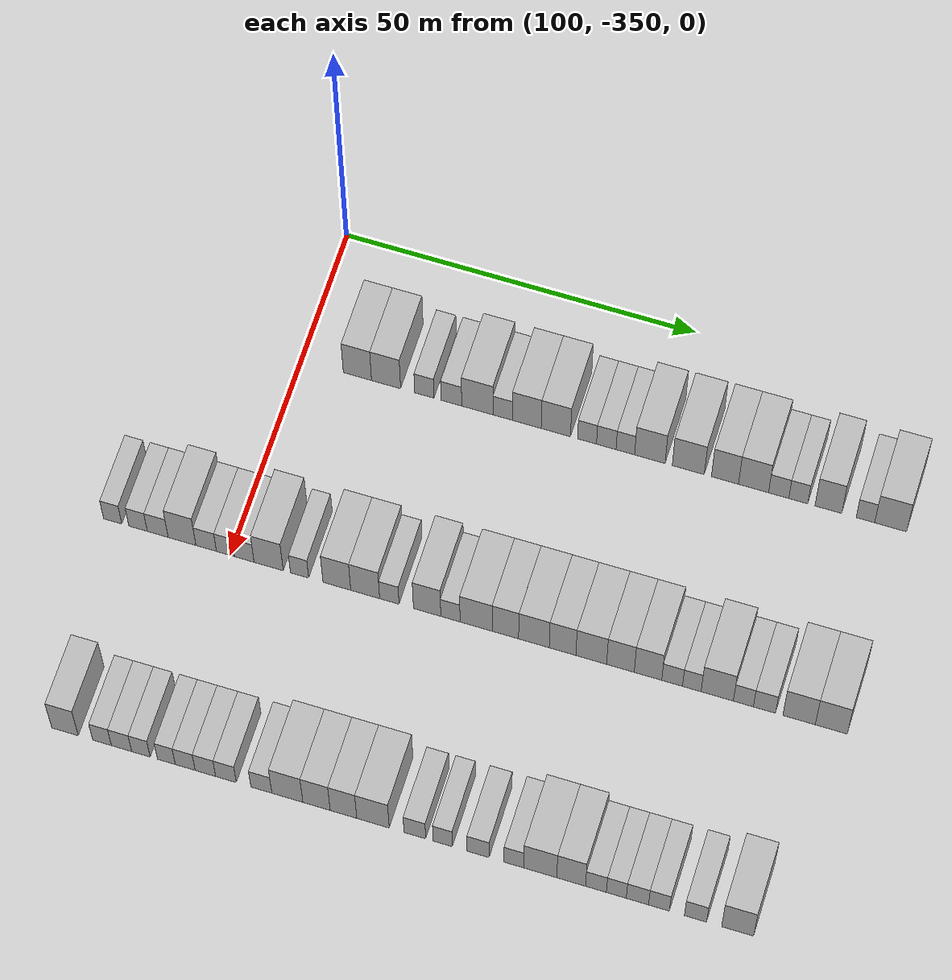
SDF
<sdf version="1.6">
 <world name="default">
  <model name="building_725">
   <static>1</static>
   <pose>115.0000 -341.9923 0 0.000000 0.000000 0.000000</pose>
   <link name="link">
    <pose>0 0 4.50 0 0 0</pose>
    <collision name="collision"><geometry><box><size>10.0000 4.0225 9.0000</size></box></geometry></collision>
    <visual name="visual">
     <cast_shadows>0</cast_shadows>
     <geometry><box><size>10.0000 4.0225 9.0000</size></box></geometry>
     <material>
      <script>
       <uri>model://HANNAS_wall/materials/scripts</uri>
       <uri>model://HANNAS_wall/materials/textures</uri>
       <name>vrc/HANNAS_wall</name>
      </script>
     </material>
    </visual>
   </link>
  </model>
  <model name="building_726">
   <static>1</static>
   <pose>115.0000 -337.9068 0 0.000000 0.000000 0.000000</pose>
   <link name="link">
    <pose>0 0 4.50 0 0 0</pose>
    <collision name="collision"><geometry><box><size>10.0000 4.1485 9.0000</size></box></geometry></collision>
    <visual name="visual">
     <cast_shadows>0</cast_shadows>
     <geometry><box><size>10.0000 4.1485 9.0000</size></box></geometry>
     <material>
      <script>
       <uri>model://HANNAS_wall/materials/scripts</uri>
       <uri>model://HANNAS_wall/materials/textures</uri>
       <name>vrc/HANNAS_wall</name>
      </script>
     </material>
    </visual>
   </link>
  </model>
  <model name="building_727">
   <static>1</static>
   <pose>115.0000 -332.4618 0 0.000000 0.000000 0.000000</pose>
   <link name="link">
    <pose>0 0 3.00 0 0 0</pose>
    <collision name="collision"><geometry><box><size>10.0000 2.7415 6.0000</size></box></geometry></collision>
    <visual name="visual">
     <cast_shadows>0</cast_shadows>
     <geometry><box><size>10.0000 2.7415 6.0000</size></box></geometry>
     <material>
      <script>
       <uri>model://HANNAS_wall/materials/scripts</uri>
       <uri>model://HANNAS_wall/materials/textures</uri>
       <name>vrc/HANNAS_wall</name>
      </script>
     </material>
    </visual>
   </link>
  </model>
  <model name="building_728">
   <static>1</static>
   <pose>115.0000 -328.6246 0 0.000000 0.000000 0.000000</pose>
   <link name="link">
    <pose>0 0 3.00 0 0 0</pose>
    <collision name="collision"><geometry><box><size>10.0000 2.9329 6.0000</size></box></geometry></collision>
    <visual name="visual">
     <cast_shadows>0</cast_shadows>
     <geometry><box><size>10.0000 2.9329 6.0000</size></box></geometry>
     <material>
      <script>
       <uri>model://HANNAS_wall/materials/scripts</uri>
       <uri>model://HANNAS_wall/materials/textures</uri>
       <name>vrc/HANNAS_wall</name>
      </script>
     </material>
    </visual>
   </link>
  </model>
  <model name="building_729">
   <static>1</static>
   <pose>115.0000 -324.9485 0 0.000000 0.000000 0.000000</pose>
   <link name="link">
    <pose>0 0 4.50 0 0 0</pose>
    <collision name="collision"><geometry><box><size>10.0000 4.4193 9.0000</size></box></geometry></collision>
    <visual name="visual">
     <cast_shadows>0</cast_shadows>
     <geometry><box><size>10.0000 4.4193 9.0000</size></box></geometry>
     <material>
      <script>
       <uri>model://HANNAS_wall/materials/scripts</uri>
       <uri>model://HANNAS_wall/materials/textures</uri>
       <name>vrc/HANNAS_wall</name>
      </script>
     </material>
    </visual>
   </link>
  </model>
  <model name="building_730">
   <static>1</static>
   <pose>115.0000 -321.3728 0 0.000000 0.000000 0.000000</pose>
   <link name="link">
    <pose>0 0 3.00 0 0 0</pose>
    <collision name="collision"><geometry><box><size>10.0000 2.7321 6.0000</size></box></geometry></collision>
    <visual name="visual">
     <cast_shadows>0</cast_shadows>
     <geometry><box><size>10.0000 2.7321 6.0000</size></box></geometry>
     <material>
      <script>
       <uri>model://HANNAS_wall/materials/scripts</uri>
       <uri>model://HANNAS_wall/materials/textures</uri>
       <name>vrc/HANNAS_wall</name>
      </script>
     </material>
    </visual>
   </link>
  </model>
  <model name="building_731">
   <static>1</static>
   <pose>115.0000 -317.9644 0 0.000000 0.000000 0.000000</pose>
   <link name="link">
    <pose>0 0 4.50 0 0 0</pose>
    <collision name="collision"><geometry><box><size>10.0000 4.0847 9.0000</size></box></geometry></collision>
    <visual name="visual">
     <cast_shadows>0</cast_shadows>
     <geometry><box><size>10.0000 4.0847 9.0000</size></box></geometry>
     <material>
      <script>
       <uri>model://HANNAS_wall/materials/scripts</uri>
       <uri>model://HANNAS_wall/materials/textures</uri>
       <name>vrc/HANNAS_wall</name>
      </script>
     </material>
    </visual>
   </link>
  </model>
  <model name="building_732">
   <static>1</static>
   <pose>115.0000 -313.8585 0 0.000000 0.000000 0.000000</pose>
   <link name="link">
    <pose>0 0 4.50 0 0 0</pose>
    <collision name="collision"><geometry><box><size>10.0000 4.1272 9.0000</size></box></geometry></collision>
    <visual name="visual">
     <cast_shadows>0</cast_shadows>
     <geometry><box><size>10.0000 4.1272 9.0000</size></box></geometry>
     <material>
      <script>
       <uri>model://HANNAS_wall/materials/scripts</uri>
       <uri>model://HANNAS_wall/materials/textures</uri>
       <name>vrc/HANNAS_wall</name>
      </script>
     </material>
    </visual>
   </link>
  </model>
  <model name="building_733">
   <static>1</static>
   <pose>115.0000 -309.4632 0 0.000000 0.000000 0.000000</pose>
   <link name="link">
    <pose>0 0 3.00 0 0 0</pose>
    <collision name="collision"><geometry><box><size>10.0000 2.6633 6.0000</size></box></geometry></collision>
    <visual name="visual">
     <cast_shadows>0</cast_shadows>
     <geometry><box><size>10.0000 2.6633 6.0000</size></box></geometry>
     <material>
      <script>
       <uri>model://HANNAS_wall/materials/scripts</uri>
       <uri>model://HANNAS_wall/materials/textures</uri>
       <name>vrc/HANNAS_wall</name>
      </script>
     </material>
    </visual>
   </link>
  </model>
  <model name="building_734">
   <static>1</static>
   <pose>115.0000 -306.7581 0 0.000000 0.000000 0.000000</pose>
   <link name="link">
    <pose>0 0 3.00 0 0 0</pose>
    <collision name="collision"><geometry><box><size>10.0000 2.7469 6.0000</size></box></geometry></collision>
    <visual name="visual">
     <cast_shadows>0</cast_shadows>
     <geometry><box><size>10.0000 2.7469 6.0000</size></box></geometry>
     <material>
      <script>
       <uri>model://HANNAS_wall/materials/scripts</uri>
       <uri>model://HANNAS_wall/materials/textures</uri>
       <name>vrc/HANNAS_wall</name>
      </script>
     </material>
    </visual>
   </link>
  </model>
  <model name="building_735">
   <static>1</static>
   <pose>115.0000 -304.0860 0 0.000000 0.000000 0.000000</pose>
   <link name="link">
    <pose>0 0 3.00 0 0 0</pose>
    <collision name="collision"><geometry><box><size>10.0000 2.5973 6.0000</size></box></geometry></collision>
    <visual name="visual">
     <cast_shadows>0</cast_shadows>
     <geometry><box><size>10.0000 2.5973 6.0000</size></box></geometry>
     <material>
      <script>
       <uri>model://HANNAS_wall/materials/scripts</uri>
       <uri>model://HANNAS_wall/materials/textures</uri>
       <name>vrc/HANNAS_wall</name>
      </script>
     </material>
    </visual>
   </link>
  </model>
  <model name="building_736">
   <static>1</static>
   <pose>115.0000 -300.6464 0 0.000000 0.000000 0.000000</pose>
   <link name="link">
    <pose>0 0 4.50 0 0 0</pose>
    <collision name="collision"><geometry><box><size>10.0000 4.2821 9.0000</size></box></geometry></collision>
    <visual name="visual">
     <cast_shadows>0</cast_shadows>
     <geometry><box><size>10.0000 4.2821 9.0000</size></box></geometry>
     <material>
      <script>
       <uri>model://HANNAS_wall/materials/scripts</uri>
       <uri>model://HANNAS_wall/materials/textures</uri>
       <name>vrc/HANNAS_wall</name>
      </script>
     </material>
    </visual>
   </link>
  </model>
  <model name="building_737">
   <static>1</static>
   <pose>115.0000 -295.2682 0 0.000000 0.000000 0.000000</pose>
   <link name="link">
    <pose>0 0 4.50 0 0 0</pose>
    <collision name="collision"><geometry><box><size>10.0000 4.4743 9.0000</size></box></geometry></collision>
    <visual name="visual">
     <cast_shadows>0</cast_shadows>
     <geometry><box><size>10.0000 4.4743 9.0000</size></box></geometry>
     <material>
      <script>
       <uri>model://HANNAS_wall/materials/scripts</uri>
       <uri>model://HANNAS_wall/materials/textures</uri>
       <name>vrc/HANNAS_wall</name>
      </script>
     </material>
    </visual>
   </link>
  </model>
  <model name="building_738">
   <static>1</static>
   <pose>115.0000 -290.1477 0 0.000000 0.000000 0.000000</pose>
   <link name="link">
    <pose>0 0 4.50 0 0 0</pose>
    <collision name="collision"><geometry><box><size>10.0000 3.7667 9.0000</size></box></geometry></collision>
    <visual name="visual">
     <cast_shadows>0</cast_shadows>
     <geometry><box><size>10.0000 3.7667 9.0000</size></box></geometry>
     <material>
      <script>
       <uri>model://HANNAS_wall/materials/scripts</uri>
       <uri>model://HANNAS_wall/materials/textures</uri>
       <name>vrc/HANNAS_wall</name>
      </script>
     </material>
    </visual>
   </link>
  </model>
  <model name="building_739">
   <static>1</static>
   <pose>115.0000 -286.1700 0 0.000000 0.000000 0.000000</pose>
   <link name="link">
    <pose>0 0 4.50 0 0 0</pose>
    <collision name="collision"><geometry><box><size>10.0000 4.1886 9.0000</size></box></geometry></collision>
    <visual name="visual">
     <cast_shadows>0</cast_shadows>
     <geometry><box><size>10.0000 4.1886 9.0000</size></box></geometry>
     <material>
      <script>
       <uri>model://HANNAS_wall/materials/scripts</uri>
       <uri>model://HANNAS_wall/materials/textures</uri>
       <name>vrc/HANNAS_wall</name>
      </script>
     </material>
    </visual>
   </link>
  </model>
  <model name="building_740">
   <static>1</static>
   <pose>115.0000 -282.6719 0 0.000000 0.000000 0.000000</pose>
   <link name="link">
    <pose>0 0 3.00 0 0 0</pose>
    <collision name="collision"><geometry><box><size>10.0000 2.8076 6.0000</size></box></geometry></collision>
    <visual name="visual">
     <cast_shadows>0</cast_shadows>
     <geometry><box><size>10.0000 2.8076 6.0000</size></box></geometry>
     <material>
      <script>
       <uri>model://HANNAS_wall/materials/scripts</uri>
       <uri>model://HANNAS_wall/materials/textures</uri>
       <name>vrc/HANNAS_wall</name>
      </script>
     </material>
    </visual>
   </link>
  </model>
  <model name="building_741">
   <static>1</static>
   <pose>115.0000 -279.9511 0 0.000000 0.000000 0.000000</pose>
   <link name="link">
    <pose>0 0 3.00 0 0 0</pose>
    <collision name="collision"><geometry><box><size>10.0000 2.6341 6.0000</size></box></geometry></collision>
    <visual name="visual">
     <cast_shadows>0</cast_shadows>
     <geometry><box><size>10.0000 2.6341 6.0000</size></box></geometry>
     <material>
      <script>
       <uri>model://HANNAS_wall/materials/scripts</uri>
       <uri>model://HANNAS_wall/materials/textures</uri>
       <name>vrc/HANNAS_wall</name>
      </script>
     </material>
    </visual>
   </link>
  </model>
  <model name="building_742">
   <static>1</static>
   <pose>115.0000 -275.7808 0 0.000000 0.000000 0.000000</pose>
   <link name="link">
    <pose>0 0 4.50 0 0 0</pose>
    <collision name="collision"><geometry><box><size>10.0000 3.7065 9.0000</size></box></geometry></collision>
    <visual name="visual">
     <cast_shadows>0</cast_shadows>
     <geometry><box><size>10.0000 3.7065 9.0000</size></box></geometry>
     <material>
      <script>
       <uri>model://HANNAS_wall/materials/scripts</uri>
       <uri>model://HANNAS_wall/materials/textures</uri>
       <name>vrc/HANNAS_wall</name>
      </script>
     </material>
    </visual>
   </link>
  </model>
  <model name="building_743">
   <static>1</static>
   <pose>115.0000 -270.6481 0 0.000000 0.000000 0.000000</pose>
   <link name="link">
    <pose>0 0 3.00 0 0 0</pose>
    <collision name="collision"><geometry><box><size>10.0000 2.5589 6.0000</size></box></geometry></collision>
    <visual name="visual">
     <cast_shadows>0</cast_shadows>
     <geometry><box><size>10.0000 2.5589 6.0000</size></box></geometry>
     <material>
      <script>
       <uri>model://HANNAS_wall/materials/scripts</uri>
       <uri>model://HANNAS_wall/materials/textures</uri>
       <name>vrc/HANNAS_wall</name>
      </script>
     </material>
    </visual>
   </link>
  </model>
  <model name="building_744">
   <static>1</static>
   <pose>115.0000 -267.1634 0 0.000000 0.000000 0.000000</pose>
   <link name="link">
    <pose>0 0 4.50 0 0 0</pose>
    <collision name="collision"><geometry><box><size>10.0000 4.4105 9.0000</size></box></geometry></collision>
    <visual name="visual">
     <cast_shadows>0</cast_shadows>
     <geometry><box><size>10.0000 4.4105 9.0000</size></box></geometry>
     <material>
      <script>
       <uri>model://HANNAS_wall/materials/scripts</uri>
       <uri>model://HANNAS_wall/materials/textures</uri>
       <name>vrc/HANNAS_wall</name>
      </script>
     </material>
    </visual>
   </link>
  </model>
  <model name="building_947">
   <static>1</static>
   <pose>145.0000 -366.5644 0 0.000000 0.000000 0.000000</pose>
   <link name="link">
    <pose>0 0 3.00 0 0 0</pose>
    <collision name="collision"><geometry><box><size>10.0000 2.5660 6.0000</size></box></geometry></collision>
    <visual name="visual">
     <cast_shadows>0</cast_shadows>
     <geometry><box><size>10.0000 2.5660 6.0000</size></box></geometry>
     <material>
      <script>
       <uri>model://HANNAS_wall/materials/scripts</uri>
       <uri>model://HANNAS_wall/materials/textures</uri>
       <name>vrc/HANNAS_wall</name>
      </script>
     </material>
    </visual>
   </link>
  </model>
  <model name="building_948">
   <static>1</static>
   <pose>145.0000 -362.9779 0 0.000000 0.000000 0.000000</pose>
   <link name="link">
    <pose>0 0 3.00 0 0 0</pose>
    <collision name="collision"><geometry><box><size>10.0000 2.6070 6.0000</size></box></geometry></collision>
    <visual name="visual">
     <cast_shadows>0</cast_shadows>
     <geometry><box><size>10.0000 2.6070 6.0000</size></box></geometry>
     <material>
      <script>
       <uri>model://HANNAS_wall/materials/scripts</uri>
       <uri>model://HANNAS_wall/materials/textures</uri>
       <name>vrc/HANNAS_wall</name>
      </script>
     </material>
    </visual>
   </link>
  </model>
  <model name="building_949">
   <static>1</static>
   <pose>145.0000 -360.2002 0 0.000000 0.000000 0.000000</pose>
   <link name="link">
    <pose>0 0 3.00 0 0 0</pose>
    <collision name="collision"><geometry><box><size>10.0000 2.9484 6.0000</size></box></geometry></collision>
    <visual name="visual">
     <cast_shadows>0</cast_shadows>
     <geometry><box><size>10.0000 2.9484 6.0000</size></box></geometry>
     <material>
      <script>
       <uri>model://HANNAS_wall/materials/scripts</uri>
       <uri>model://HANNAS_wall/materials/textures</uri>
       <name>vrc/HANNAS_wall</name>
      </script>
     </material>
    </visual>
   </link>
  </model>
  <model name="building_950">
   <static>1</static>
   <pose>145.0000 -356.7727 0 0.000000 0.000000 0.000000</pose>
   <link name="link">
    <pose>0 0 4.50 0 0 0</pose>
    <collision name="collision"><geometry><box><size>10.0000 3.9065 9.0000</size></box></geometry></collision>
    <visual name="visual">
     <cast_shadows>0</cast_shadows>
     <geometry><box><size>10.0000 3.9065 9.0000</size></box></geometry>
     <material>
      <script>
       <uri>model://HANNAS_wall/materials/scripts</uri>
       <uri>model://HANNAS_wall/materials/textures</uri>
       <name>vrc/HANNAS_wall</name>
      </script>
     </material>
    </visual>
   </link>
  </model>
  <model name="building_951">
   <static>1</static>
   <pose>145.0000 -353.3731 0 0.000000 0.000000 0.000000</pose>
   <link name="link">
    <pose>0 0 3.00 0 0 0</pose>
    <collision name="collision"><geometry><box><size>10.0000 2.8927 6.0000</size></box></geometry></collision>
    <visual name="visual">
     <cast_shadows>0</cast_shadows>
     <geometry><box><size>10.0000 2.8927 6.0000</size></box></geometry>
     <material>
      <script>
       <uri>model://HANNAS_wall/materials/scripts</uri>
       <uri>model://HANNAS_wall/materials/textures</uri>
       <name>vrc/HANNAS_wall</name>
      </script>
     </material>
    </visual>
   </link>
  </model>
  <model name="building_952">
   <static>1</static>
   <pose>145.0000 -350.6606 0 0.000000 0.000000 0.000000</pose>
   <link name="link">
    <pose>0 0 3.00 0 0 0</pose>
    <collision name="collision"><geometry><box><size>10.0000 2.5324 6.0000</size></box></geometry></collision>
    <visual name="visual">
     <cast_shadows>0</cast_shadows>
     <geometry><box><size>10.0000 2.5324 6.0000</size></box></geometry>
     <material>
      <script>
       <uri>model://HANNAS_wall/materials/scripts</uri>
       <uri>model://HANNAS_wall/materials/textures</uri>
       <name>vrc/HANNAS_wall</name>
      </script>
     </material>
    </visual>
   </link>
  </model>
  <model name="building_953">
   <static>1</static>
   <pose>145.0000 -348.0221 0 0.000000 0.000000 0.000000</pose>
   <link name="link">
    <pose>0 0 3.00 0 0 0</pose>
    <collision name="collision"><geometry><box><size>10.0000 2.7446 6.0000</size></box></geometry></collision>
    <visual name="visual">
     <cast_shadows>0</cast_shadows>
     <geometry><box><size>10.0000 2.7446 6.0000</size></box></geometry>
     <material>
      <script>
       <uri>model://HANNAS_wall/materials/scripts</uri>
       <uri>model://HANNAS_wall/materials/textures</uri>
       <name>vrc/HANNAS_wall</name>
      </script>
     </material>
    </visual>
   </link>
  </model>
  <model name="building_954">
   <static>1</static>
   <pose>145.0000 -344.6041 0 0.000000 0.000000 0.000000</pose>
   <link name="link">
    <pose>0 0 4.50 0 0 0</pose>
    <collision name="collision"><geometry><box><size>10.0000 4.0914 9.0000</size></box></geometry></collision>
    <visual name="visual">
     <cast_shadows>0</cast_shadows>
     <geometry><box><size>10.0000 4.0914 9.0000</size></box></geometry>
     <material>
      <script>
       <uri>model://HANNAS_wall/materials/scripts</uri>
       <uri>model://HANNAS_wall/materials/textures</uri>
       <name>vrc/HANNAS_wall</name>
      </script>
     </material>
    </visual>
   </link>
  </model>
  <model name="building_955">
   <static>1</static>
   <pose>145.0000 -340.2827 0 0.000000 0.000000 0.000000</pose>
   <link name="link">
    <pose>0 0 3.00 0 0 0</pose>
    <collision name="collision"><geometry><box><size>10.0000 2.5514 6.0000</size></box></geometry></collision>
    <visual name="visual">
     <cast_shadows>0</cast_shadows>
     <geometry><box><size>10.0000 2.5514 6.0000</size></box></geometry>
     <material>
      <script>
       <uri>model://HANNAS_wall/materials/scripts</uri>
       <uri>model://HANNAS_wall/materials/textures</uri>
       <name>vrc/HANNAS_wall</name>
      </script>
     </material>
    </visual>
   </link>
  </model>
  <model name="building_956">
   <static>1</static>
   <pose>145.0000 -335.0701 0 0.000000 0.000000 0.000000</pose>
   <link name="link">
    <pose>0 0 4.50 0 0 0</pose>
    <collision name="collision"><geometry><box><size>10.0000 3.8737 9.0000</size></box></geometry></collision>
    <visual name="visual">
     <cast_shadows>0</cast_shadows>
     <geometry><box><size>10.0000 3.8737 9.0000</size></box></geometry>
     <material>
      <script>
       <uri>model://HANNAS_wall/materials/scripts</uri>
       <uri>model://HANNAS_wall/materials/textures</uri>
       <name>vrc/HANNAS_wall</name>
      </script>
     </material>
    </visual>
   </link>
  </model>
  <model name="building_957">
   <static>1</static>
   <pose>145.0000 -331.1214 0 0.000000 0.000000 0.000000</pose>
   <link name="link">
    <pose>0 0 4.50 0 0 0</pose>
    <collision name="collision"><geometry><box><size>10.0000 4.0237 9.0000</size></box></geometry></collision>
    <visual name="visual">
     <cast_shadows>0</cast_shadows>
     <geometry><box><size>10.0000 4.0237 9.0000</size></box></geometry>
     <material>
      <script>
       <uri>model://HANNAS_wall/materials/scripts</uri>
       <uri>model://HANNAS_wall/materials/textures</uri>
       <name>vrc/HANNAS_wall</name>
      </script>
     </material>
    </visual>
   </link>
  </model>
  <model name="building_958">
   <static>1</static>
   <pose>145.0000 -327.7614 0 0.000000 0.000000 0.000000</pose>
   <link name="link">
    <pose>0 0 3.00 0 0 0</pose>
    <collision name="collision"><geometry><box><size>10.0000 2.6963 6.0000</size></box></geometry></collision>
    <visual name="visual">
     <cast_shadows>0</cast_shadows>
     <geometry><box><size>10.0000 2.6963 6.0000</size></box></geometry>
     <material>
      <script>
       <uri>model://HANNAS_wall/materials/scripts</uri>
       <uri>model://HANNAS_wall/materials/textures</uri>
       <name>vrc/HANNAS_wall</name>
      </script>
     </material>
    </visual>
   </link>
  </model>
  <model name="building_959">
   <static>1</static>
   <pose>145.0000 -322.5159 0 0.000000 0.000000 0.000000</pose>
   <link name="link">
    <pose>0 0 4.50 0 0 0</pose>
    <collision name="collision"><geometry><box><size>10.0000 3.7948 9.0000</size></box></geometry></collision>
    <visual name="visual">
     <cast_shadows>0</cast_shadows>
     <geometry><box><size>10.0000 3.7948 9.0000</size></box></geometry>
     <material>
      <script>
       <uri>model://HANNAS_wall/materials/scripts</uri>
       <uri>model://HANNAS_wall/materials/textures</uri>
       <name>vrc/HANNAS_wall</name>
      </script>
     </material>
    </visual>
   </link>
  </model>
  <model name="building_960">
   <static>1</static>
   <pose>145.0000 -319.2818 0 0.000000 0.000000 0.000000</pose>
   <link name="link">
    <pose>0 0 3.00 0 0 0</pose>
    <collision name="collision"><geometry><box><size>10.0000 2.6733 6.0000</size></box></geometry></collision>
    <visual name="visual">
     <cast_shadows>0</cast_shadows>
     <geometry><box><size>10.0000 2.6733 6.0000</size></box></geometry>
     <material>
      <script>
       <uri>model://HANNAS_wall/materials/scripts</uri>
       <uri>model://HANNAS_wall/materials/textures</uri>
       <name>vrc/HANNAS_wall</name>
      </script>
     </material>
    </visual>
   </link>
  </model>
  <model name="building_961">
   <static>1</static>
   <pose>145.0000 -315.7292 0 0.000000 0.000000 0.000000</pose>
   <link name="link">
    <pose>0 0 4.50 0 0 0</pose>
    <collision name="collision"><geometry><box><size>10.0000 4.4320 9.0000</size></box></geometry></collision>
    <visual name="visual">
     <cast_shadows>0</cast_shadows>
     <geometry><box><size>10.0000 4.4320 9.0000</size></box></geometry>
     <material>
      <script>
       <uri>model://HANNAS_wall/materials/scripts</uri>
       <uri>model://HANNAS_wall/materials/textures</uri>
       <name>vrc/HANNAS_wall</name>
      </script>
     </material>
    </visual>
   </link>
  </model>
  <model name="building_962">
   <static>1</static>
   <pose>145.0000 -311.6909 0 0.000000 0.000000 0.000000</pose>
   <link name="link">
    <pose>0 0 4.50 0 0 0</pose>
    <collision name="collision"><geometry><box><size>10.0000 3.6445 9.0000</size></box></geometry></collision>
    <visual name="visual">
     <cast_shadows>0</cast_shadows>
     <geometry><box><size>10.0000 3.6445 9.0000</size></box></geometry>
     <material>
      <script>
       <uri>model://HANNAS_wall/materials/scripts</uri>
       <uri>model://HANNAS_wall/materials/textures</uri>
       <name>vrc/HANNAS_wall</name>
      </script>
     </material>
    </visual>
   </link>
  </model>
  <model name="building_963">
   <static>1</static>
   <pose>145.0000 -307.7551 0 0.000000 0.000000 0.000000</pose>
   <link name="link">
    <pose>0 0 4.50 0 0 0</pose>
    <collision name="collision"><geometry><box><size>10.0000 4.2270 9.0000</size></box></geometry></collision>
    <visual name="visual">
     <cast_shadows>0</cast_shadows>
     <geometry><box><size>10.0000 4.2270 9.0000</size></box></geometry>
     <material>
      <script>
       <uri>model://HANNAS_wall/materials/scripts</uri>
       <uri>model://HANNAS_wall/materials/textures</uri>
       <name>vrc/HANNAS_wall</name>
      </script>
     </material>
    </visual>
   </link>
  </model>
  <model name="building_964">
   <static>1</static>
   <pose>145.0000 -303.8091 0 0.000000 0.000000 0.000000</pose>
   <link name="link">
    <pose>0 0 4.50 0 0 0</pose>
    <collision name="collision"><geometry><box><size>10.0000 3.6650 9.0000</size></box></geometry></collision>
    <visual name="visual">
     <cast_shadows>0</cast_shadows>
     <geometry><box><size>10.0000 3.6650 9.0000</size></box></geometry>
     <material>
      <script>
       <uri>model://HANNAS_wall/materials/scripts</uri>
       <uri>model://HANNAS_wall/materials/textures</uri>
       <name>vrc/HANNAS_wall</name>
      </script>
     </material>
    </visual>
   </link>
  </model>
  <model name="building_965">
   <static>1</static>
   <pose>145.0000 -299.8672 0 0.000000 0.000000 0.000000</pose>
   <link name="link">
    <pose>0 0 4.50 0 0 0</pose>
    <collision name="collision"><geometry><box><size>10.0000 4.2188 9.0000</size></box></geometry></collision>
    <visual name="visual">
     <cast_shadows>0</cast_shadows>
     <geometry><box><size>10.0000 4.2188 9.0000</size></box></geometry>
     <material>
      <script>
       <uri>model://HANNAS_wall/materials/scripts</uri>
       <uri>model://HANNAS_wall/materials/textures</uri>
       <name>vrc/HANNAS_wall</name>
      </script>
     </material>
    </visual>
   </link>
  </model>
  <model name="building_966">
   <static>1</static>
   <pose>145.0000 -295.8624 0 0.000000 0.000000 0.000000</pose>
   <link name="link">
    <pose>0 0 4.50 0 0 0</pose>
    <collision name="collision"><geometry><box><size>10.0000 3.7910 9.0000</size></box></geometry></collision>
    <visual name="visual">
     <cast_shadows>0</cast_shadows>
     <geometry><box><size>10.0000 3.7910 9.0000</size></box></geometry>
     <material>
      <script>
       <uri>model://HANNAS_wall/materials/scripts</uri>
       <uri>model://HANNAS_wall/materials/textures</uri>
       <name>vrc/HANNAS_wall</name>
      </script>
     </material>
    </visual>
   </link>
  </model>
  <model name="building_967">
   <static>1</static>
   <pose>145.0000 -292.0888 0 0.000000 0.000000 0.000000</pose>
   <link name="link">
    <pose>0 0 4.50 0 0 0</pose>
    <collision name="collision"><geometry><box><size>10.0000 3.7561 9.0000</size></box></geometry></collision>
    <visual name="visual">
     <cast_shadows>0</cast_shadows>
     <geometry><box><size>10.0000 3.7561 9.0000</size></box></geometry>
     <material>
      <script>
       <uri>model://HANNAS_wall/materials/scripts</uri>
       <uri>model://HANNAS_wall/materials/textures</uri>
       <name>vrc/HANNAS_wall</name>
      </script>
     </material>
    </visual>
   </link>
  </model>
  <model name="building_968">
   <static>1</static>
   <pose>145.0000 -288.7880 0 0.000000 0.000000 0.000000</pose>
   <link name="link">
    <pose>0 0 3.00 0 0 0</pose>
    <collision name="collision"><geometry><box><size>10.0000 2.8455 6.0000</size></box></geometry></collision>
    <visual name="visual">
     <cast_shadows>0</cast_shadows>
     <geometry><box><size>10.0000 2.8455 6.0000</size></box></geometry>
     <material>
      <script>
       <uri>model://HANNAS_wall/materials/scripts</uri>
       <uri>model://HANNAS_wall/materials/textures</uri>
       <name>vrc/HANNAS_wall</name>
      </script>
     </material>
    </visual>
   </link>
  </model>
  <model name="building_969">
   <static>1</static>
   <pose>145.0000 -286.1008 0 0.000000 0.000000 0.000000</pose>
   <link name="link">
    <pose>0 0 3.00 0 0 0</pose>
    <collision name="collision"><geometry><box><size>10.0000 2.5289 6.0000</size></box></geometry></collision>
    <visual name="visual">
     <cast_shadows>0</cast_shadows>
     <geometry><box><size>10.0000 2.5289 6.0000</size></box></geometry>
     <material>
      <script>
       <uri>model://HANNAS_wall/materials/scripts</uri>
       <uri>model://HANNAS_wall/materials/textures</uri>
       <name>vrc/HANNAS_wall</name>
      </script>
     </material>
    </visual>
   </link>
  </model>
  <model name="building_970">
   <static>1</static>
   <pose>145.0000 -282.6382 0 0.000000 0.000000 0.000000</pose>
   <link name="link">
    <pose>0 0 4.50 0 0 0</pose>
    <collision name="collision"><geometry><box><size>10.0000 4.3963 9.0000</size></box></geometry></collision>
    <visual name="visual">
     <cast_shadows>0</cast_shadows>
     <geometry><box><size>10.0000 4.3963 9.0000</size></box></geometry>
     <material>
      <script>
       <uri>model://HANNAS_wall/materials/scripts</uri>
       <uri>model://HANNAS_wall/materials/textures</uri>
       <name>vrc/HANNAS_wall</name>
      </script>
     </material>
    </visual>
   </link>
  </model>
  <model name="building_971">
   <static>1</static>
   <pose>145.0000 -279.0759 0 0.000000 0.000000 0.000000</pose>
   <link name="link">
    <pose>0 0 3.00 0 0 0</pose>
    <collision name="collision"><geometry><box><size>10.0000 2.7283 6.0000</size></box></geometry></collision>
    <visual name="visual">
     <cast_shadows>0</cast_shadows>
     <geometry><box><size>10.0000 2.7283 6.0000</size></box></geometry>
     <material>
      <script>
       <uri>model://HANNAS_wall/materials/scripts</uri>
       <uri>model://HANNAS_wall/materials/textures</uri>
       <name>vrc/HANNAS_wall</name>
      </script>
     </material>
    </visual>
   </link>
  </model>
  <model name="building_972">
   <static>1</static>
   <pose>145.0000 -276.2142 0 0.000000 0.000000 0.000000</pose>
   <link name="link">
    <pose>0 0 3.00 0 0 0</pose>
    <collision name="collision"><geometry><box><size>10.0000 2.9952 6.0000</size></box></geometry></collision>
    <visual name="visual">
     <cast_shadows>0</cast_shadows>
     <geometry><box><size>10.0000 2.9952 6.0000</size></box></geometry>
     <material>
      <script>
       <uri>model://HANNAS_wall/materials/scripts</uri>
       <uri>model://HANNAS_wall/materials/textures</uri>
       <name>vrc/HANNAS_wall</name>
      </script>
     </material>
    </visual>
   </link>
  </model>
  <model name="building_973">
   <static>1</static>
   <pose>145.0000 -271.5149 0 0.000000 0.000000 0.000000</pose>
   <link name="link">
    <pose>0 0 4.50 0 0 0</pose>
    <collision name="collision"><geometry><box><size>10.0000 4.4034 9.0000</size></box></geometry></collision>
    <visual name="visual">
     <cast_shadows>0</cast_shadows>
     <geometry><box><size>10.0000 4.4034 9.0000</size></box></geometry>
     <material>
      <script>
       <uri>model://HANNAS_wall/materials/scripts</uri>
       <uri>model://HANNAS_wall/materials/textures</uri>
       <name>vrc/HANNAS_wall</name>
      </script>
     </material>
    </visual>
   </link>
  </model>
  <model name="building_974">
   <static>1</static>
   <pose>145.0000 -267.1525 0 0.000000 0.000000 0.000000</pose>
   <link name="link">
    <pose>0 0 4.50 0 0 0</pose>
    <collision name="collision"><geometry><box><size>10.0000 4.3215 9.0000</size></box></geometry></collision>
    <visual name="visual">
     <cast_shadows>0</cast_shadows>
     <geometry><box><size>10.0000 4.3215 9.0000</size></box></geometry>
     <material>
      <script>
       <uri>model://HANNAS_wall/materials/scripts</uri>
       <uri>model://HANNAS_wall/materials/textures</uri>
       <name>vrc/HANNAS_wall</name>
      </script>
     </material>
    </visual>
   </link>
  </model>
  <model name="building_1184">
   <static>1</static>
   <pose>175.0000 -362.5368 0 0.000000 0.000000 0.000000</pose>
   <link name="link">
    <pose>0 0 4.50 0 0 0</pose>
    <collision name="collision"><geometry><box><size>10.0000 3.6674 9.0000</size></box></geometry></collision>
    <visual name="visual">
     <cast_shadows>0</cast_shadows>
     <geometry><box><size>10.0000 3.6674 9.0000</size></box></geometry>
     <material>
      <script>
       <uri>model://HANNAS_wall/materials/scripts</uri>
       <uri>model://HANNAS_wall/materials/textures</uri>
       <name>vrc/HANNAS_wall</name>
      </script>
     </material>
    </visual>
   </link>
  </model>
  <model name="building_1185">
   <static>1</static>
   <pose>175.0000 -357.4145 0 0.000000 0.000000 0.000000</pose>
   <link name="link">
    <pose>0 0 3.00 0 0 0</pose>
    <collision name="collision"><geometry><box><size>10.0000 2.5773 6.0000</size></box></geometry></collision>
    <visual name="visual">
     <cast_shadows>0</cast_shadows>
     <geometry><box><size>10.0000 2.5773 6.0000</size></box></geometry>
     <material>
      <script>
       <uri>model://HANNAS_wall/materials/scripts</uri>
       <uri>model://HANNAS_wall/materials/textures</uri>
       <name>vrc/HANNAS_wall</name>
      </script>
     </material>
    </visual>
   </link>
  </model>
  <model name="building_1186">
   <static>1</static>
   <pose>175.0000 -354.7277 0 0.000000 0.000000 0.000000</pose>
   <link name="link">
    <pose>0 0 3.00 0 0 0</pose>
    <collision name="collision"><geometry><box><size>10.0000 2.7964 6.0000</size></box></geometry></collision>
    <visual name="visual">
     <cast_shadows>0</cast_shadows>
     <geometry><box><size>10.0000 2.7964 6.0000</size></box></geometry>
     <material>
      <script>
       <uri>model://HANNAS_wall/materials/scripts</uri>
       <uri>model://HANNAS_wall/materials/textures</uri>
       <name>vrc/HANNAS_wall</name>
      </script>
     </material>
    </visual>
   </link>
  </model>
  <model name="building_1187">
   <static>1</static>
   <pose>175.0000 -352.0535 0 0.000000 0.000000 0.000000</pose>
   <link name="link">
    <pose>0 0 3.00 0 0 0</pose>
    <collision name="collision"><geometry><box><size>10.0000 2.5521 6.0000</size></box></geometry></collision>
    <visual name="visual">
     <cast_shadows>0</cast_shadows>
     <geometry><box><size>10.0000 2.5521 6.0000</size></box></geometry>
     <material>
      <script>
       <uri>model://HANNAS_wall/materials/scripts</uri>
       <uri>model://HANNAS_wall/materials/textures</uri>
       <name>vrc/HANNAS_wall</name>
      </script>
     </material>
    </visual>
   </link>
  </model>
  <model name="building_1188">
   <static>1</static>
   <pose>175.0000 -348.5471 0 0.000000 0.000000 0.000000</pose>
   <link name="link">
    <pose>0 0 3.00 0 0 0</pose>
    <collision name="collision"><geometry><box><size>10.0000 2.4607 6.0000</size></box></geometry></collision>
    <visual name="visual">
     <cast_shadows>0</cast_shadows>
     <geometry><box><size>10.0000 2.4607 6.0000</size></box></geometry>
     <material>
      <script>
       <uri>model://HANNAS_wall/materials/scripts</uri>
       <uri>model://HANNAS_wall/materials/textures</uri>
       <name>vrc/HANNAS_wall</name>
      </script>
     </material>
    </visual>
   </link>
  </model>
  <model name="building_1189">
   <static>1</static>
   <pose>175.0000 -345.9542 0 0.000000 0.000000 0.000000</pose>
   <link name="link">
    <pose>0 0 3.00 0 0 0</pose>
    <collision name="collision"><geometry><box><size>10.0000 2.7251 6.0000</size></box></geometry></collision>
    <visual name="visual">
     <cast_shadows>0</cast_shadows>
     <geometry><box><size>10.0000 2.7251 6.0000</size></box></geometry>
     <material>
      <script>
       <uri>model://HANNAS_wall/materials/scripts</uri>
       <uri>model://HANNAS_wall/materials/textures</uri>
       <name>vrc/HANNAS_wall</name>
      </script>
     </material>
    </visual>
   </link>
  </model>
  <model name="building_1190">
   <static>1</static>
   <pose>175.0000 -343.1793 0 0.000000 0.000000 0.000000</pose>
   <link name="link">
    <pose>0 0 3.00 0 0 0</pose>
    <collision name="collision"><geometry><box><size>10.0000 2.8247 6.0000</size></box></geometry></collision>
    <visual name="visual">
     <cast_shadows>0</cast_shadows>
     <geometry><box><size>10.0000 2.8247 6.0000</size></box></geometry>
     <material>
      <script>
       <uri>model://HANNAS_wall/materials/scripts</uri>
       <uri>model://HANNAS_wall/materials/textures</uri>
       <name>vrc/HANNAS_wall</name>
      </script>
     </material>
    </visual>
   </link>
  </model>
  <model name="building_1191">
   <static>1</static>
   <pose>175.0000 -340.3575 0 0.000000 0.000000 0.000000</pose>
   <link name="link">
    <pose>0 0 3.00 0 0 0</pose>
    <collision name="collision"><geometry><box><size>10.0000 2.8189 6.0000</size></box></geometry></collision>
    <visual name="visual">
     <cast_shadows>0</cast_shadows>
     <geometry><box><size>10.0000 2.8189 6.0000</size></box></geometry>
     <material>
      <script>
       <uri>model://HANNAS_wall/materials/scripts</uri>
       <uri>model://HANNAS_wall/materials/textures</uri>
       <name>vrc/HANNAS_wall</name>
      </script>
     </material>
    </visual>
   </link>
  </model>
  <model name="building_1192">
   <static>1</static>
   <pose>175.0000 -335.5160 0 0.000000 0.000000 0.000000</pose>
   <link name="link">
    <pose>0 0 3.00 0 0 0</pose>
    <collision name="collision"><geometry><box><size>10.0000 2.8642 6.0000</size></box></geometry></collision>
    <visual name="visual">
     <cast_shadows>0</cast_shadows>
     <geometry><box><size>10.0000 2.8642 6.0000</size></box></geometry>
     <material>
      <script>
       <uri>model://HANNAS_wall/materials/scripts</uri>
       <uri>model://HANNAS_wall/materials/textures</uri>
       <name>vrc/HANNAS_wall</name>
      </script>
     </material>
    </visual>
   </link>
  </model>
  <model name="building_1193">
   <static>1</static>
   <pose>175.0000 -331.9648 0 0.000000 0.000000 0.000000</pose>
   <link name="link">
    <pose>0 0 4.50 0 0 0</pose>
    <collision name="collision"><geometry><box><size>10.0000 4.2382 9.0000</size></box></geometry></collision>
    <visual name="visual">
     <cast_shadows>0</cast_shadows>
     <geometry><box><size>10.0000 4.2382 9.0000</size></box></geometry>
     <material>
      <script>
       <uri>model://HANNAS_wall/materials/scripts</uri>
       <uri>model://HANNAS_wall/materials/textures</uri>
       <name>vrc/HANNAS_wall</name>
      </script>
     </material>
    </visual>
   </link>
  </model>
  <model name="building_1194">
   <static>1</static>
   <pose>175.0000 -327.9836 0 0.000000 0.000000 0.000000</pose>
   <link name="link">
    <pose>0 0 4.50 0 0 0</pose>
    <collision name="collision"><geometry><box><size>10.0000 3.7242 9.0000</size></box></geometry></collision>
    <visual name="visual">
     <cast_shadows>0</cast_shadows>
     <geometry><box><size>10.0000 3.7242 9.0000</size></box></geometry>
     <material>
      <script>
       <uri>model://HANNAS_wall/materials/scripts</uri>
       <uri>model://HANNAS_wall/materials/textures</uri>
       <name>vrc/HANNAS_wall</name>
      </script>
     </material>
    </visual>
   </link>
  </model>
  <model name="building_1195">
   <static>1</static>
   <pose>175.0000 -324.3154 0 0.000000 0.000000 0.000000</pose>
   <link name="link">
    <pose>0 0 4.50 0 0 0</pose>
    <collision name="collision"><geometry><box><size>10.0000 3.6124 9.0000</size></box></geometry></collision>
    <visual name="visual">
     <cast_shadows>0</cast_shadows>
     <geometry><box><size>10.0000 3.6124 9.0000</size></box></geometry>
     <material>
      <script>
       <uri>model://HANNAS_wall/materials/scripts</uri>
       <uri>model://HANNAS_wall/materials/textures</uri>
       <name>vrc/HANNAS_wall</name>
      </script>
     </material>
    </visual>
   </link>
  </model>
  <model name="building_1196">
   <static>1</static>
   <pose>175.0000 -320.3025 0 0.000000 0.000000 0.000000</pose>
   <link name="link">
    <pose>0 0 4.50 0 0 0</pose>
    <collision name="collision"><geometry><box><size>10.0000 4.4135 9.0000</size></box></geometry></collision>
    <visual name="visual">
     <cast_shadows>0</cast_shadows>
     <geometry><box><size>10.0000 4.4135 9.0000</size></box></geometry>
     <material>
      <script>
       <uri>model://HANNAS_wall/materials/scripts</uri>
       <uri>model://HANNAS_wall/materials/textures</uri>
       <name>vrc/HANNAS_wall</name>
      </script>
     </material>
    </visual>
   </link>
  </model>
  <model name="building_1197">
   <static>1</static>
   <pose>175.0000 -314.6246 0 0.000000 0.000000 0.000000</pose>
   <link name="link">
    <pose>0 0 3.00 0 0 0</pose>
    <collision name="collision"><geometry><box><size>10.0000 2.9423 6.0000</size></box></geometry></collision>
    <visual name="visual">
     <cast_shadows>0</cast_shadows>
     <geometry><box><size>10.0000 2.9423 6.0000</size></box></geometry>
     <material>
      <script>
       <uri>model://HANNAS_wall/materials/scripts</uri>
       <uri>model://HANNAS_wall/materials/textures</uri>
       <name>vrc/HANNAS_wall</name>
      </script>
     </material>
    </visual>
   </link>
  </model>
  <model name="building_1198">
   <static>1</static>
   <pose>175.0000 -310.8557 0 0.000000 0.000000 0.000000</pose>
   <link name="link">
    <pose>0 0 3.00 0 0 0</pose>
    <collision name="collision"><geometry><box><size>10.0000 2.5956 6.0000</size></box></geometry></collision>
    <visual name="visual">
     <cast_shadows>0</cast_shadows>
     <geometry><box><size>10.0000 2.5956 6.0000</size></box></geometry>
     <material>
      <script>
       <uri>model://HANNAS_wall/materials/scripts</uri>
       <uri>model://HANNAS_wall/materials/textures</uri>
       <name>vrc/HANNAS_wall</name>
      </script>
     </material>
    </visual>
   </link>
  </model>
  <model name="building_1199">
   <static>1</static>
   <pose>175.0000 -306.0709 0 0.000000 0.000000 0.000000</pose>
   <link name="link">
    <pose>0 0 3.00 0 0 0</pose>
    <collision name="collision"><geometry><box><size>10.0000 2.9740 6.0000</size></box></geometry></collision>
    <visual name="visual">
     <cast_shadows>0</cast_shadows>
     <geometry><box><size>10.0000 2.9740 6.0000</size></box></geometry>
     <material>
      <script>
       <uri>model://HANNAS_wall/materials/scripts</uri>
       <uri>model://HANNAS_wall/materials/textures</uri>
       <name>vrc/HANNAS_wall</name>
      </script>
     </material>
    </visual>
   </link>
  </model>
  <model name="building_1200">
   <static>1</static>
   <pose>175.0000 -301.2609 0 0.000000 0.000000 0.000000</pose>
   <link name="link">
    <pose>0 0 3.00 0 0 0</pose>
    <collision name="collision"><geometry><box><size>10.0000 2.6459 6.0000</size></box></geometry></collision>
    <visual name="visual">
     <cast_shadows>0</cast_shadows>
     <geometry><box><size>10.0000 2.6459 6.0000</size></box></geometry>
     <material>
      <script>
       <uri>model://HANNAS_wall/materials/scripts</uri>
       <uri>model://HANNAS_wall/materials/textures</uri>
       <name>vrc/HANNAS_wall</name>
      </script>
     </material>
    </visual>
   </link>
  </model>
  <model name="building_1201">
   <static>1</static>
   <pose>175.0000 -297.7165 0 0.000000 0.000000 0.000000</pose>
   <link name="link">
    <pose>0 0 4.50 0 0 0</pose>
    <collision name="collision"><geometry><box><size>10.0000 4.4431 9.0000</size></box></geometry></collision>
    <visual name="visual">
     <cast_shadows>0</cast_shadows>
     <geometry><box><size>10.0000 4.4431 9.0000</size></box></geometry>
     <material>
      <script>
       <uri>model://HANNAS_wall/materials/scripts</uri>
       <uri>model://HANNAS_wall/materials/textures</uri>
       <name>vrc/HANNAS_wall</name>
      </script>
     </material>
    </visual>
   </link>
  </model>
  <model name="building_1202">
   <static>1</static>
   <pose>175.0000 -293.5627 0 0.000000 0.000000 0.000000</pose>
   <link name="link">
    <pose>0 0 4.50 0 0 0</pose>
    <collision name="collision"><geometry><box><size>10.0000 3.8644 9.0000</size></box></geometry></collision>
    <visual name="visual">
     <cast_shadows>0</cast_shadows>
     <geometry><box><size>10.0000 3.8644 9.0000</size></box></geometry>
     <material>
      <script>
       <uri>model://HANNAS_wall/materials/scripts</uri>
       <uri>model://HANNAS_wall/materials/textures</uri>
       <name>vrc/HANNAS_wall</name>
      </script>
     </material>
    </visual>
   </link>
  </model>
  <model name="building_1203">
   <static>1</static>
   <pose>175.0000 -290.2325 0 0.000000 0.000000 0.000000</pose>
   <link name="link">
    <pose>0 0 3.00 0 0 0</pose>
    <collision name="collision"><geometry><box><size>10.0000 2.7960 6.0000</size></box></geometry></collision>
    <visual name="visual">
     <cast_shadows>0</cast_shadows>
     <geometry><box><size>10.0000 2.7960 6.0000</size></box></geometry>
     <material>
      <script>
       <uri>model://HANNAS_wall/materials/scripts</uri>
       <uri>model://HANNAS_wall/materials/textures</uri>
       <name>vrc/HANNAS_wall</name>
      </script>
     </material>
    </visual>
   </link>
  </model>
  <model name="building_1204">
   <static>1</static>
   <pose>175.0000 -287.5034 0 0.000000 0.000000 0.000000</pose>
   <link name="link">
    <pose>0 0 3.00 0 0 0</pose>
    <collision name="collision"><geometry><box><size>10.0000 2.6622 6.0000</size></box></geometry></collision>
    <visual name="visual">
     <cast_shadows>0</cast_shadows>
     <geometry><box><size>10.0000 2.6622 6.0000</size></box></geometry>
     <material>
      <script>
       <uri>model://HANNAS_wall/materials/scripts</uri>
       <uri>model://HANNAS_wall/materials/textures</uri>
       <name>vrc/HANNAS_wall</name>
      </script>
     </material>
    </visual>
   </link>
  </model>
  <model name="building_1205">
   <static>1</static>
   <pose>175.0000 -284.6814 0 0.000000 0.000000 0.000000</pose>
   <link name="link">
    <pose>0 0 3.00 0 0 0</pose>
    <collision name="collision"><geometry><box><size>10.0000 2.9818 6.0000</size></box></geometry></collision>
    <visual name="visual">
     <cast_shadows>0</cast_shadows>
     <geometry><box><size>10.0000 2.9818 6.0000</size></box></geometry>
     <material>
      <script>
       <uri>model://HANNAS_wall/materials/scripts</uri>
       <uri>model://HANNAS_wall/materials/textures</uri>
       <name>vrc/HANNAS_wall</name>
      </script>
     </material>
    </visual>
   </link>
  </model>
  <model name="building_1206">
   <static>1</static>
   <pose>175.0000 -281.8031 0 0.000000 0.000000 0.000000</pose>
   <link name="link">
    <pose>0 0 3.00 0 0 0</pose>
    <collision name="collision"><geometry><box><size>10.0000 2.7747 6.0000</size></box></geometry></collision>
    <visual name="visual">
     <cast_shadows>0</cast_shadows>
     <geometry><box><size>10.0000 2.7747 6.0000</size></box></geometry>
     <material>
      <script>
       <uri>model://HANNAS_wall/materials/scripts</uri>
       <uri>model://HANNAS_wall/materials/textures</uri>
       <name>vrc/HANNAS_wall</name>
      </script>
     </material>
    </visual>
   </link>
  </model>
  <model name="building_1207">
   <static>1</static>
   <pose>175.0000 -276.9399 0 0.000000 0.000000 0.000000</pose>
   <link name="link">
    <pose>0 0 3.00 0 0 0</pose>
    <collision name="collision"><geometry><box><size>10.0000 2.9518 6.0000</size></box></geometry></collision>
    <visual name="visual">
     <cast_shadows>0</cast_shadows>
     <geometry><box><size>10.0000 2.9518 6.0000</size></box></geometry>
     <material>
      <script>
       <uri>model://HANNAS_wall/materials/scripts</uri>
       <uri>model://HANNAS_wall/materials/textures</uri>
       <name>vrc/HANNAS_wall</name>
      </script>
     </material>
    </visual>
   </link>
  </model>
  <model name="building_1208">
   <static>1</static>
   <pose>175.0000 -271.3387 0 0.000000 0.000000 0.000000</pose>
   <link name="link">
    <pose>0 0 4.50 0 0 0</pose>
    <collision name="collision"><geometry><box><size>10.0000 4.2505 9.0000</size></box></geometry></collision>
    <visual name="visual">
     <cast_shadows>0</cast_shadows>
     <geometry><box><size>10.0000 4.2505 9.0000</size></box></geometry>
     <material>
      <script>
       <uri>model://HANNAS_wall/materials/scripts</uri>
       <uri>model://HANNAS_wall/materials/textures</uri>
       <name>vrc/HANNAS_wall</name>
      </script>
     </material>
    </visual>
   </link>
  </model>
 </world>
</sdf>
